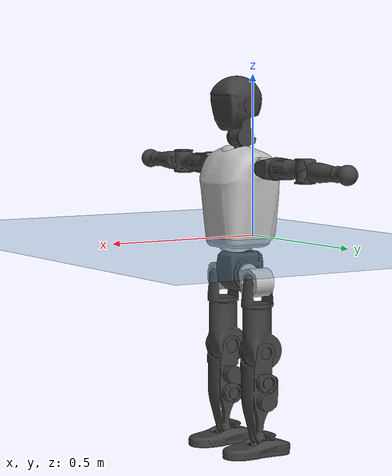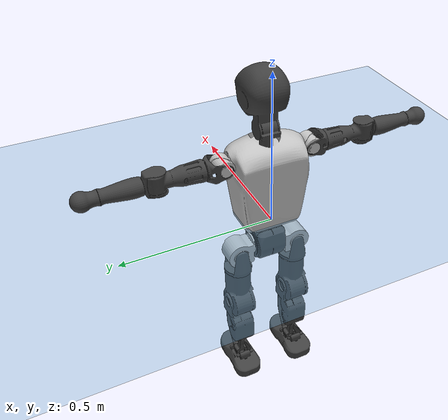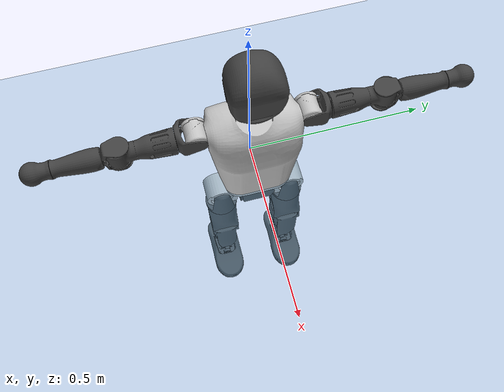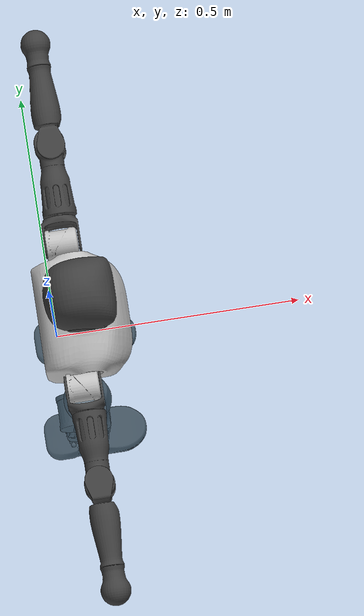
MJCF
<mujoco model="T1">
  <compiler angle="radian" assetdir="assets" balanceinertia="true" inertiafromgeom="false"/>

  <option timestep="0.005" density="1.2" viscosity="2e-05"/>

  <size nkey="1"/>

  <visual>
    <quality shadowsize="8192"/>
    <map shadowclip="0.5"/>
  </visual>

  <default>
    <default class="/">
      <joint armature="0.01" damping="0.01" frictionloss="0.1"/>
      <geom contype="0" conaffinity="0" group="1" solref="-1000 -80"/>
      <site size="0.01 0.005 0.005" group="5"/>
      <general forcelimited="true" biastype="affine" gainprm="25" biasprm="0 -25 -0.6"/>
      <default class="t1">
        <geom rgba="0.25 0.25 0.25 1"/>
        <default class="visual">
          <geom type="mesh" group="2"/>
        </default>
        <default class="collision">
          <geom group="3"/>
        </default>
        <default class="foot">
          <geom size="0.1115 0.05 0.015" type="box" condim="6" group="4" priority="1" solimp="0.015 1 0.015"/>
        </default>
        <default class="reward_collision_sphere">
          <geom group="5" rgba="1 0 0 1"/>
        </default>
      </default>
    </default>
  </default>

  <asset>
    <texture type="skybox" colorspace="auto" name="//unnamed_texture_0" builtin="gradient" rgb1="0.95 0.95 0.95" rgb2="0.95 0.95 0.95" width="100" height="600"/>
    <texture type="2d" colorspace="auto" name="texplane" builtin="checker" rgb1="0.345 0.575 0.748" rgb2="0.345 0.575 0.748" markrgb="1 1 1" width="512" height="512"/>
    <material name="MatPlane" class="/" texture="texplane" texuniform="true" texrepeat="2 2" specular="0.9"/>
    <mesh name="Trunk" class="/" file="Trunk.stl"/>
    <mesh name="H1" class="/" file="H1.stl"/>
    <mesh name="H2" class="/" file="H2.stl"/>
    <mesh name="AL1" class="/" file="AL1.stl"/>
    <mesh name="AL2" class="/" file="AL2.stl"/>
    <mesh name="AL3" class="/" file="AL3.stl"/>
    <mesh name="left_hand_link" class="/" file="left_hand_link.stl"/>
    <mesh name="AR1" class="/" file="AR1.stl"/>
    <mesh name="AR2" class="/" file="AR2.stl"/>
    <mesh name="AR3" class="/" file="AR3.stl"/>
    <mesh name="right_hand_link" class="/" file="right_hand_link.stl"/>
    <mesh name="Waist" class="/" file="Waist.stl"/>
    <mesh name="Hip_Pitch_Left" class="/" file="Hip_Pitch_Left.stl"/>
    <mesh name="Hip_Roll_Left" class="/" file="Hip_Roll_Left.stl"/>
    <mesh name="Hip_Yaw_Left" class="/" file="Hip_Yaw_Left.stl"/>
    <mesh name="Shank_Left" class="/" file="Shank_Left.stl"/>
    <mesh name="Ankle_Cross_Left" class="/" file="Ankle_Cross_Left.stl"/>
    <mesh name="left_foot_link" class="/" file="left_foot_link.stl"/>
    <mesh name="Hip_Pitch_Right" class="/" file="Hip_Pitch_Right.stl"/>
    <mesh name="Hip_Roll_Right" class="/" file="Hip_Roll_Right.stl"/>
    <mesh name="Hip_Yaw_Right" class="/" file="Hip_Yaw_Right.stl"/>
    <mesh name="Shank_Right" class="/" file="Shank_Right.stl"/>
    <mesh name="Ankle_Cross_Right" class="/" file="Ankle_Cross_Right.stl"/>
    <mesh name="right_foot_link" class="/" file="right_foot_link.stl"/>
  </asset>

  <worldbody>
    <geom name="floor" class="/" size="100 100 0.125" type="plane" group="0" material="MatPlane"/>
    <light name="toplight_shadow" class="/" pos="0 0 5" dir="0.0990148 0.0990148 -0.990148" type="directional" ambient="0.04 0.04 0.04" diffuse="0.55 0.55 0.55" specular="0.12 0.12 0.12"/>
    <light name="toplight_fill" class="/" pos="0 0 5" dir="0.0990148 0.0990148 -0.990148" type="directional" castshadow="false" ambient="0.04 0.04 0.04" diffuse="0.3 0.3 0.3" specular="0.08 0.08 0.08"/>
    <body name="trunk" childclass="t1" pos="-0.00165455 -0.00280099 0.0023572" quat="0.999999 0.000355854 -0.00121311 -8.89016e-05">
      <inertial pos="0.0391032 -0.00187844 0.106805" quat="0.999927 0.00198159 -0.0117389 -0.00185993" mass="8.13767" diaginertia="0.018026 0.0625568 0.0557549"/>
      <joint name="//unnamed_joint_0" type="free" armature="0" damping="0" frictionloss="0"/>
      <geom name="//unnamed_geom_1" class="visual" rgba="0.76 0.76 0.76 1" mesh="Trunk"/>
      <geom name="//unnamed_geom_2" class="collision" size="0.0667355 0.0889807 0.133471" pos="0.0432116 0 0.119761" type="box"/>
      <geom name="//unnamed_geom_3" class="reward_collision_sphere" size="0.102328" pos="0.0432116 0 0.0998007"/>
      <geom name="//unnamed_geom_4" class="reward_collision_sphere" size="0.0133471" pos="0.0432116 0.0808536 0"/>
      <geom name="//unnamed_geom_5" class="reward_collision_sphere" size="0.0133471" pos="0.0432116 -0.0808536 0"/>
      <geom name="//unnamed_geom_6" class="reward_collision_sphere" size="0.0133471" pos="0.0432116 0.10178 0.179641"/>
      <geom name="//unnamed_geom_7" class="reward_collision_sphere" size="0.0133471" pos="0.0432116 -0.10178 0.179641"/>
      <site name="imu" pos="-0.0134228 -0.0126968 -0.00203438" size="0.00889807"/>
      <camera name="track" pos="0 -1.90244 0" quat="0.707107 0.707107 0 0" mode="trackcom"/>
      <camera name="ego_camera" pos="0.0878636 0 0.419163" quat="-0.5 -0.5 0.5 0.5"/>
      <body name="H1" pos="0.0454785 0.000889568 0.243422" quat="0.999999 -0.000787548 -0.000165599 -0.000725957">
        <inertial pos="0.000882734 -0.00177696 0.0598704" quat="0.761839 -0.0125151 0.00937667 0.647577" mass="0.315272" diaginertia="4.62265e-05 0.000179672 0.000143351"/>
        <joint name="AAHead_yaw" pos="0 0 0" axis="-0.00171634 -0.0119922 0.999927" range="-1.6253 1.55189" armature="0.0100202" damping="0.00683756" frictionloss="0.0764711"/>
        <geom name="//unnamed_geom_8" class="visual" mesh="H1"/>
        <body name="H2" pos="0.00222994 0.000729386 0.0625226" quat="1 6.8094e-05 0.000495862 -0.000171597">
          <inertial pos="0.00445958 -0.00106607 0.0979298" quat="0.988608 0.104812 -0.0759494 -0.0768188" mass="0.428371" diaginertia="0.000377359 0.00141594 0.001639"/>
          <joint name="Head_pitch" pos="0 0 0" axis="-0.00389006 -0.999897 0.0138262" range="-1.2056 0.393569" armature="0.00863968" damping="0.0121446" frictionloss="0.0828568"/>
          <geom name="//unnamed_geom_9" class="visual" mesh="H2"/>
          <geom name="//unnamed_geom_10" class="collision" size="0.0711845" pos="0.00720193 0 0.109781"/>
          <geom name="//unnamed_geom_11" class="reward_collision_sphere" size="0.0800826" pos="0.0144039 0 0.0998007"/>
        </body>
      </body>
      <body name="AL1" pos="0.040956 0.100167 0.218043" quat="1 -0.000169427 0.000547168 -0.000178508">
        <inertial pos="-0.00143577 0.0428666 -0.00206302" quat="0.507639 0.487586 -0.511249 0.49314" mass="0.379312" diaginertia="0.000269786 0.0010369 0.000297545"/>
        <joint name="Left_Shoulder_Pitch" pos="0 0 0" axis="-0.0010087 0.99991 0.0134107" stiffness="0.0112591" range="-3.30157 1.18944" armature="0.00880925" damping="0.0148997" frictionloss="0.0845548"/>
        <geom name="//unnamed_geom_12" class="visual" rgba="0.76 0.76 0.76 1" mesh="AL1"/>
        <body name="AL2" pos="0.00148168 0.0431105 -0.00282977" quat="1 0.00035413 0.000347251 -0.000109519">
          <inertial pos="0.0014103 0.0344436 -0.000488347" quat="0.487755 0.512129 -0.488346 0.511211" mass="0.110843" diaginertia="7.78047e-05 0.000260572 0.000172365"/>
          <joint name="Left_Shoulder_Roll" pos="0 0 0" axis="-0.999927 -0.0119957 0.0012654" range="-1.52274 1.73132" armature="0.00814185" damping="0" frictionloss="0.100075"/>
          <geom name="//unnamed_geom_13" class="visual" mesh="AL2"/>
          <body name="AL3" pos="0.00337549 0.0595372 0.00201444" quat="0.999999 0.000923575 -0.000431296 -9.21069e-05">
            <inertial pos="-0.000622732 0.0784162 -0.00143465" quat="0.712934 0.701183 0.00706889 0.00418727" mass="0.711097" diaginertia="0.00242656 0.0100091 0.000583476"/>
            <joint name="Left_Elbow_Pitch" pos="0 0 0" axis="0.012686 -0.999899 -0.00645036" range="-2.24138 2.22844" armature="0.0100177" damping="0" frictionloss="0.101575"/>
            <geom name="//unnamed_geom_14" class="visual" mesh="AL3"/>
            <geom name="//unnamed_geom_15" class="collision" size="0.0266942 0.0667355" pos="0 0.047561 0" quat="0.707105 0.707108 0 0" type="cylinder"/>
            <geom name="//unnamed_geom_16" class="reward_collision_sphere" size="0.032033"/>
            <body name="left_hand_link" pos="0.00278066 0.140002 -0.00120493" quat="0.999999 -0.000982464 0.000530552 0.000820537">
              <inertial pos="0.000208419 0.104859 -0.00229023" quat="0.707783 0.70641 0.000880326 -0.00529008" mass="0.238001" diaginertia="0.0016245 0.00641311 0.000212665"/>
              <joint name="Left_Elbow_Yaw" pos="0 0 0" axis="0.015681 0.00853903 0.999841" stiffness="0.010903" range="-2.44728 0.00136948" armature="0.00870288" damping="0.0107717" frictionloss="0.100217"/>
              <geom name="//unnamed_geom_17" class="visual" mesh="left_hand_link"/>
              <geom name="//unnamed_geom_18" class="collision" size="0.0266942 0.0778581" pos="0 0.123659 0" quat="0.707105 0.707108 0 0" type="cylinder"/>
              <geom name="//unnamed_geom_19" class="reward_collision_sphere" size="0.0444903"/>
              <geom name="//unnamed_geom_20" class="reward_collision_sphere" size="0.0311432" pos="0 0.104634 0"/>
              <geom name="//unnamed_geom_21" class="reward_collision_sphere" size="0.0311432" pos="0 0.204512 0"/>
            </body>
          </body>
        </body>
      </body>
      <body name="AR1" pos="0.0404782 -0.0985951 0.219148" quat="0.999999 0.000216169 0.000432091 0.00101381">
        <inertial pos="-0.00132368 -0.045332 0.00232499" quat="0.505346 0.494457 -0.50448 0.495619" mass="0.37402" diaginertia="0.000254594 0.00101606 0.00029898"/>
        <joint name="Right_Shoulder_Pitch" pos="0 0 0" axis="0.000563201 -1 0.000388663" stiffness="0.00246032" range="-1.23568 3.31004" armature="0.00771596" damping="0.0111373" frictionloss="0.0875133"/>
        <geom name="//unnamed_geom_22" class="visual" rgba="0.76 0.76 0.76 1" mesh="AR1"/>
        <body name="AR2" pos="0.000414546 -0.0409528 -0.00120452" quat="1 8.07521e-08 -3.95944e-06 -8.53174e-06">
          <inertial pos="0.00284302 -0.036212 -0.00205358" quat="0.501959 0.493122 -0.516959 0.487464" mass="0.116582" diaginertia="7.53882e-05 0.000262867 0.000169895"/>
          <joint name="Right_Shoulder_Roll" pos="0 0 0" axis="-0.999992 -0.000808788 0.00382638" stiffness="0.00881422" range="-1.74995 1.62247" armature="0.00874756" damping="0" frictionloss="0.0881308"/>
          <geom name="//unnamed_geom_23" class="visual" mesh="AR2"/>
          <body name="AR3" pos="0.00250335 -0.0568218 -0.00337157" quat="1 0.000289911 -0.000224021 -0.000489962">
            <inertial pos="0.000921822 -0.0836304 0.000834414" quat="0.708301 0.705907 0.000988941 0.00227204" mass="0.720256" diaginertia="0.00251357 0.0104602 0.000642217"/>
            <joint name="Right_Elbow_Pitch" pos="0 0 0" axis="0.00463577 0.999982 -0.00373558" range="-2.27417 2.27307" armature="0.00993368" damping="0.00789013" frictionloss="0.0780822"/>
            <geom name="//unnamed_geom_24" class="visual" mesh="AR3"/>
            <geom name="//unnamed_geom_25" class="collision" size="0.0266942 0.0667355" pos="0 -0.047561 0" quat="0.707105 0.707108 0 0" type="cylinder"/>
            <geom name="//unnamed_geom_26" class="reward_collision_sphere" size="0.032033"/>
            <body name="right_hand_link" pos="-0.000330276 -0.140843 0.000710428" quat="0.999999 0.00101722 -0.000648424 0.000565958">
              <inertial pos="-0.000328453 -0.10313 -0.00119537" quat="0.705993 0.708149 -0.00147126 0.00983605" mass="0.234087" diaginertia="0.00153106 0.00633923 0.000219487"/>
              <joint name="Right_Elbow_Yaw" pos="0 0 0" axis="0.00835411 0.00173479 0.999964" range="-0.0486358 2.47733" armature="0.00905829" damping="0.0034335" frictionloss="0.0909354"/>
              <geom name="//unnamed_geom_27" class="visual" mesh="right_hand_link"/>
              <geom name="//unnamed_geom_28" class="collision" size="0.0266942 0.0778581" pos="0 -0.123659 0" quat="0.707105 0.707108 0 0" type="cylinder"/>
              <geom name="//unnamed_geom_29" class="reward_collision_sphere" size="0.0444903"/>
              <geom name="//unnamed_geom_30" class="reward_collision_sphere" size="0.0311432" pos="0 -0.104634 0"/>
              <geom name="//unnamed_geom_31" class="reward_collision_sphere" size="0.0311432" pos="0 -0.204512 0"/>
            </body>
          </body>
        </body>
      </body>
      <body name="Waist" pos="0.047985 0.000368914 -0.115889" quat="1 0.000312405 -0.000780137 0.000158298">
        <inertial pos="0.00112368 -0.000482782 0.0097294" quat="0.984397 -0.00975675 -0.175576 0.00638602" mass="1.76252" diaginertia="0.00100642 0.00419174 0.00468231"/>
        <joint name="Waist" pos="0 0 0" axis="0.0148909 0.00240063 0.999886" range="-1.57537 1.58821" armature="0.00952431" damping="0.0222704" frictionloss="0.0769178"/>
        <geom name="//unnamed_geom_32" class="visual" mesh="Waist"/>
        <body name="Hip_Pitch_Left" pos="0.00381618 0.102581 -0.00184201" quat="1 -0.00081642 0.000113831 0.000315276">
          <inertial pos="0.00248052 -0.00514286 -0.0206379" quat="0.976554 0.214529 0.0171317 -0.00513783" mass="0.745801" diaginertia="0.000347277 0.00114417 0.00126663"/>
          <joint name="Left_Hip_Pitch" pos="0 0 0" axis="-0.008009 0.999916 -0.0102117" stiffness="0.00201234" range="-1.81098 1.62121" armature="0.00938942" damping="0.000287293" frictionloss="0.0921005"/>
          <geom name="//unnamed_geom_33" class="visual" rgba="0.76 0.76 0.76 1" mesh="Hip_Pitch_Left"/>
          <body name="Hip_Roll_Left" pos="0.0017972 5.9862e-05 -0.0180225" quat="1 3.91495e-05 -0.00013738 -5.57989e-05">
            <inertial pos="-0.00168216 0.00275234 -0.0538058" quat="0.700283 -0.0141576 -0.0125133 0.713615" mass="0.269177" diaginertia="0.000340229 0.00112102 0.000502045"/>
            <joint name="Left_Hip_Roll" pos="0 0 0" axis="-0.999984 0.00327743 0.00460669" range="-1.57172 0.23975" armature="0.00850834" damping="0.00978306" frictionloss="0.076466"/>
            <geom name="//unnamed_geom_34" class="visual" mesh="Hip_Roll_Left"/>
            <geom name="//unnamed_geom_35" class="reward_collision_sphere" size="0.0489394"/>
            <body name="Hip_Yaw_Left" pos="-0.00116769 0.00199769 -0.0796956" quat="1 -6.17439e-05 -6.584e-05 6.22032e-05">
              <inertial pos="-0.00547791 -0.000850438 -0.0882704" quat="0.689193 -0.0351005 -0.0339431 0.722931" mass="1.43221" diaginertia="0.00486817 0.0189789 0.00245673"/>
              <joint name="Left_Hip_Yaw" pos="0 0 0" axis="-0.00427839 0.010892 -0.999932" range="-0.96239 0.950904" armature="0.00927444" damping="0.0137936" frictionloss="0.0897247"/>
              <geom name="//unnamed_geom_36" class="visual" mesh="Hip_Yaw_Left"/>
              <geom name="//unnamed_geom_37" class="collision" size="0.0444903 0.0711845" type="cylinder"/>
              <body name="Shank_Left" pos="-0.00587949 0.00186909 -0.136967" quat="1 0.000324744 0.000689799 -0.000119466">
                <inertial pos="-0.00468643 -0.00185243 -0.123972" quat="0.997227 0.000611447 -0.0243835 0.0703109" mass="1.22843" diaginertia="0.0069319 0.0268737 0.00189956"/>
                <joint name="Left_Knee_Pitch" pos="0 0 0" axis="0.00154076 0.999996 0.00227414" stiffness="0.00179143" range="0.0446003 2.33332" armature="0.00932354" damping="0.0234165" frictionloss="0.0948456"/>
                <geom name="//unnamed_geom_38" class="visual" mesh="Shank_Left"/>
                <geom name="//unnamed_geom_39" class="collision" size="0.0444903 0.0667355" pos="0 0 -0.119761" type="cylinder"/>
                <geom name="//unnamed_geom_40" class="reward_collision_sphere" size="0.0578374"/>
                <body name="Ankle_Cross_Left" pos="0.00110736 -0.000710324 -0.282388" quat="1 -6.07114e-05 0.000198233 0.000276263">
                  <inertial pos="-0.00183655 0.000688621 -0.00545408" quat="0.446022 0.549529 0.550598 0.442634" mass="0.048728" diaginertia="5.71031e-06 1.91582e-05 1.1166e-05"/>
                  <joint name="Left_Ankle_Pitch" pos="0 0 0" axis="0.00582637 0.999931 0.0101888" range="-0.897329 0.347551" armature="0.00898101" damping="0.00704735" frictionloss="0.0796817"/>
                  <geom name="//unnamed_geom_41" class="visual" mesh="Ankle_Cross_Left"/>
                  <body name="left_foot_link" pos="0.00117065 0.00212552 -0.0118194" quat="1 0.000751807 0.000535211 -0.000360566">
                    <inertial pos="0.00234257 0.000198733 -0.0105855" quat="0.00493435 0.630725 -0.00234644 0.775987" mass="0.501218" diaginertia="0.000539398 0.00190353 0.00214238"/>
                    <joint name="Left_Ankle_Roll" pos="0 0 0" axis="-0.999993 -0.000258542 0.00374817" range="-0.454541 0.392976" armature="0.00891197" damping="0" frictionloss="0.0948916"/>
                    <geom name="//unnamed_geom_42" class="visual" mesh="left_foot_link"/>
                    <geom name="left_foot" class="foot" size="0.109981 0.040257 0.0126212" pos="0.00720193 0 -0.0149701"/>
                    <geom name="//unnamed_geom_44" class="reward_collision_sphere" size="0.0462699" pos="0.00720193 0 -0.0149701"/>
                    <geom name="//unnamed_geom_45" class="reward_collision_sphere" size="0.0266942" pos="0.0684184 -0.021878 -0.0149701"/>
                    <geom name="//unnamed_geom_46" class="reward_collision_sphere" size="0.0266942" pos="-0.0504135 -0.021878 -0.0149701"/>
                    <site name="left_foot" class="foot" pos="0.00720193 0 -0.0149701" size="0.00889807"/>
                  </body>
                </body>
              </body>
            </body>
          </body>
        </body>
        <body name="Hip_Pitch_Right" pos="-0.00342045 -0.101934 -0.000116768" quat="0.999999 -0.00139244 0.000532777 -0.000786457">
          <inertial pos="-0.00218691 0.00665066 -0.0150956" quat="0.973982 -0.226302 0.0118821 -0.00232962" mass="0.734707" diaginertia="0.00035711 0.00117352 0.00128942"/>
          <joint name="Right_Hip_Pitch" pos="0 0 0" axis="0.00201217 -0.999996 0.00188845" range="-1.56828 1.82424" armature="0.00934122" damping="0" frictionloss="0.101547"/>
          <geom name="//unnamed_geom_47" class="visual" rgba="0.76 0.76 0.76 1" mesh="Hip_Pitch_Right"/>
          <body name="Hip_Roll_Right" pos="0.00234958 0.000190247 -0.021791" quat="1 5.85429e-05 3.2701e-05 9.54362e-05">
            <inertial pos="-0.00165078 -0.00263211 -0.0563555" quat="0.7057 -0.0050651 0.00515912 0.708474" mass="0.281624" diaginertia="0.000334956 0.00118991 0.000501847"/>
            <joint name="Right_Hip_Roll" pos="0 0 0" axis="-0.99999 -0.00379747 -0.00224606" range="-0.25287 1.58319" armature="0.010027" damping="0.0072208" frictionloss="0.0786915"/>
            <geom name="//unnamed_geom_48" class="visual" mesh="Hip_Roll_Right"/>
            <geom name="//unnamed_geom_49" class="reward_collision_sphere" size="0.0489394"/>
            <body name="Hip_Yaw_Right" pos="-0.00206195 0.00102084 -0.0823394" quat="1 -0.000137093 -4.79721e-05 -3.23549e-05">
              <inertial pos="-0.00468466 -0.00303319 -0.0870746" quat="0.715329 -0.0290499 -0.0333285 0.697388" mass="1.57333" diaginertia="0.00495171 0.0209433 0.00255618"/>
              <joint name="Right_Hip_Yaw" pos="0 0 0" axis="0.00154353 -0.00530404 -0.999985" stiffness="0.00758567" range="-0.982262 1.01038" armature="0.00802956" damping="0" frictionloss="0.091413"/>
              <geom name="//unnamed_geom_50" class="visual" mesh="Hip_Yaw_Right"/>
              <geom name="//unnamed_geom_51" class="collision" size="0.0444903 0.0711845" type="cylinder"/>
              <body name="Shank_Right" pos="-0.0078363 0.000647243 -0.13576" quat="1 -2.60404e-05 4.91422e-06 1.94927e-05">
                <inertial pos="-0.00221891 0.00108525 -0.121371" quat="0.999659 0.00195973 -0.0115093 -0.0233474" mass="1.28985" diaginertia="0.0070965 0.0274225 0.00193191"/>
                <joint name="Right_Knee_Pitch" pos="0 0 0" axis="-0.00262305 -0.999992 -0.00305857" range="-2.33949 0.00311878" armature="0.00904809" damping="0.0085992" frictionloss="0.0983508"/>
                <geom name="//unnamed_geom_52" class="visual" mesh="Shank_Right"/>
                <geom name="//unnamed_geom_53" class="collision" size="0.0444903 0.0667355" pos="0 0 -0.119761" type="cylinder"/>
                <geom name="//unnamed_geom_54" class="reward_collision_sphere" size="0.0578374"/>
                <body name="Ankle_Cross_Right" pos="0.00300638 0.000460566 -0.279946" quat="1 -3.3299e-05 0.000194237 -7.15231e-05">
                  <inertial pos="-0.00169433 0.00263805 -0.00841796" quat="0.448961 0.543268 0.549439 0.448788" mass="0.049593" diaginertia="5.81536e-06 2.0106e-05 1.08695e-05"/>
                  <joint name="Right_Ankle_Pitch" pos="0 0 0" axis="-0.00179861 -0.999962 0.0085382" range="-0.372858 0.859502" armature="0.00888221" damping="0.00679559" frictionloss="0.0921672"/>
                  <geom name="//unnamed_geom_55" class="visual" mesh="Ankle_Cross_Right"/>
                  <body name="right_foot_link" pos="3.41479e-05 -0.0038909 -0.00909557" quat="1 -0.000127444 -0.000129797 0.000147377">
                    <inertial pos="0.00194711 -0.000472726 -0.00637062" quat="-0.00241798 0.621939 0.0138396 0.78294" mass="0.476758" diaginertia="0.000533012 0.00187816 0.00210724"/>
                    <joint name="Right_Ankle_Roll" pos="0 0 0" axis="-0.999896 -0.0125991 0.00697501" stiffness="0.000490262" range="-0.437756 0.412226" armature="0.00951627" damping="0.0106942" frictionloss="0.0787523"/>
                    <geom name="//unnamed_geom_56" class="visual" mesh="right_foot_link"/>
                    <geom name="right_foot" class="foot" size="0.103649 0.0396283 0.0120734" pos="0.00720193 0 -0.0149701"/>
                    <geom name="//unnamed_geom_58" class="reward_collision_sphere" size="0.0355923"/>
                    <geom name="//unnamed_geom_59" class="reward_collision_sphere" size="0.0266942" pos="0.00720193 0 -0.0149701"/>
                    <geom name="//unnamed_geom_60" class="reward_collision_sphere" size="0.0266942" pos="0.0684184 0.021878 -0.0149701"/>
                    <geom name="//unnamed_geom_61" class="reward_collision_sphere" size="0.0266942" pos="-0.0504135 0.021878 -0.0149701"/>
                    <site name="right_foot" class="foot" pos="0.00720193 0 -0.0149701" size="0.00889807"/>
                  </body>
                </body>
              </body>
            </body>
          </body>
        </body>
      </body>
    </body>
  </worldbody>

  <contact>
    <pair class="/" geom1="floor" geom2="left_foot" name="//unnamed_contact_0"/>
    <pair class="/" geom1="floor" geom2="right_foot" name="//unnamed_contact_1"/>
  </contact>

  <actuator>
    <general name="AAHead_yaw" class="/" joint="AAHead_yaw" forcerange="-5.62365 5.62365" gainprm="22.0248" biasprm="0 -22.0248 -0.511405"/>
    <general name="Head_pitch" class="/" joint="Head_pitch" forcerange="-6.54056 6.54056" gainprm="22.0248" biasprm="0 -22.0248 -0.511405"/>
    <general name="Left_Shoulder_Pitch" class="/" joint="Left_Shoulder_Pitch" forcerange="-16.0257 16.0257" gainprm="22.0248" biasprm="0 -22.0248 -0.511405"/>
    <general name="Left_Shoulder_Roll" class="/" joint="Left_Shoulder_Roll" forcerange="-16.7294 16.7294" gainprm="22.0248" biasprm="0 -22.0248 -0.511405"/>
    <general name="Left_Elbow_Pitch" class="/" joint="Left_Elbow_Pitch" forcerange="-17.7573 17.7573" gainprm="22.0248" biasprm="0 -22.0248 -0.511405"/>
    <general name="Left_Elbow_Yaw" class="/" joint="Left_Elbow_Yaw" forcerange="-17.1751 17.1751" gainprm="22.0248" biasprm="0 -22.0248 -0.511405"/>
    <general name="Right_Shoulder_Pitch" class="/" joint="Right_Shoulder_Pitch" forcerange="-16.2281 16.2281" gainprm="22.0248" biasprm="0 -22.0248 -0.511405"/>
    <general name="Right_Shoulder_Roll" class="/" joint="Right_Shoulder_Roll" forcerange="-17.7298 17.7298" gainprm="22.0248" biasprm="0 -22.0248 -0.511405"/>
    <general name="Right_Elbow_Pitch" class="/" joint="Right_Elbow_Pitch" forcerange="-17.644 17.644" gainprm="22.0248" biasprm="0 -22.0248 -0.511405"/>
    <general name="Right_Elbow_Yaw" class="/" joint="Right_Elbow_Yaw" forcerange="-14.2491 14.2491" gainprm="22.0248" biasprm="0 -22.0248 -0.511405"/>
    <general name="Waist" class="/" joint="Waist" forcerange="-26.7913 26.7913" gainprm="22.0248" biasprm="0 -22.0248 -0.511405"/>
    <general name="Left_Hip_Pitch" class="/" joint="Left_Hip_Pitch" forcerange="-43.8183 43.8183" gainprm="22.0248" biasprm="0 -22.0248 -0.511405"/>
    <general name="Left_Hip_Roll" class="/" joint="Left_Hip_Roll" forcerange="-27.6578 27.6578" gainprm="22.0248" biasprm="0 -22.0248 -0.511405"/>
    <general name="Left_Hip_Yaw" class="/" joint="Left_Hip_Yaw" forcerange="-27.6182 27.6182" gainprm="22.0248" biasprm="0 -22.0248 -0.511405"/>
    <general name="Left_Knee_Pitch" class="/" joint="Left_Knee_Pitch" forcerange="-52.8317 52.8317" gainprm="22.0248" biasprm="0 -22.0248 -0.511405"/>
    <general name="Left_Ankle_Pitch" class="/" joint="Left_Ankle_Pitch" forcerange="-18.0071 18.0071" gainprm="22.0248" biasprm="0 -22.0248 -0.511405"/>
    <general name="Left_Ankle_Roll" class="/" joint="Left_Ankle_Roll" forcerange="-13.3906 13.3906" gainprm="22.0248" biasprm="0 -22.0248 -0.511405"/>
    <general name="Right_Hip_Pitch" class="/" joint="Right_Hip_Pitch" forcerange="-41.3013 41.3013" gainprm="22.0248" biasprm="0 -22.0248 -0.511405"/>
    <general name="Right_Hip_Roll" class="/" joint="Right_Hip_Roll" forcerange="-26.552 26.552" gainprm="22.0248" biasprm="0 -22.0248 -0.511405"/>
    <general name="Right_Hip_Yaw" class="/" joint="Right_Hip_Yaw" forcerange="-26.1638 26.1638" gainprm="22.0248" biasprm="0 -22.0248 -0.511405"/>
    <general name="Right_Knee_Pitch" class="/" joint="Right_Knee_Pitch" forcerange="-48.82 48.82" gainprm="22.0248" biasprm="0 -22.0248 -0.511405"/>
    <general name="Right_Ankle_Pitch" class="/" joint="Right_Ankle_Pitch" forcerange="-15.9335 15.9335" gainprm="22.0248" biasprm="0 -22.0248 -0.511405"/>
    <general name="Right_Ankle_Roll" class="/" joint="Right_Ankle_Roll" forcerange="-14.6527 14.6527" gainprm="22.0248" biasprm="0 -22.0248 -0.511405"/>
  </actuator>

  <sensor>
    <gyro site="imu" name="imu_angular_velocity"/>
    <velocimeter site="imu" name="imu_linear_velocity"/>
    <framelinvel objtype="site" objname="left_foot" name="left_foot_global_linear_velocity"/>
    <framelinvel objtype="site" objname="right_foot" name="right_foot_global_linear_velocity"/>
  </sensor>

  <keyframe>
    <key name="home" qpos="0 0 0.6385 1 0 0 0 0 0 0 1.4 0 -0.4 0 -1.4 0 0.4 0 -0.4 0 0 0.8 -0.4 0 0.4 0 0 -0.8 0.4 0"/>
  </keyframe>
</mujoco>
